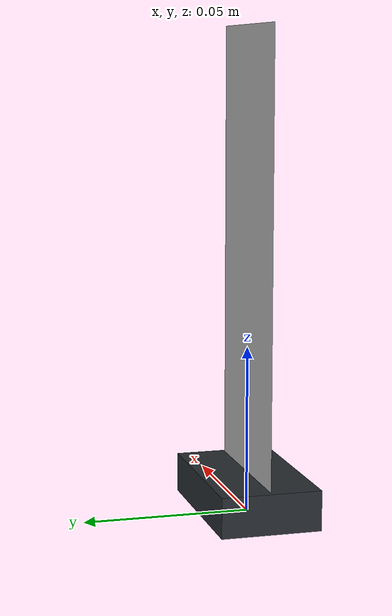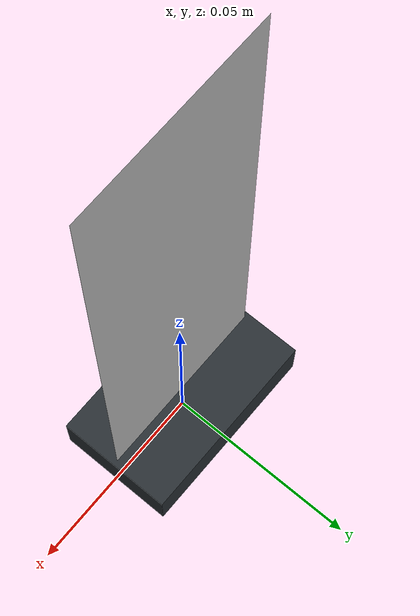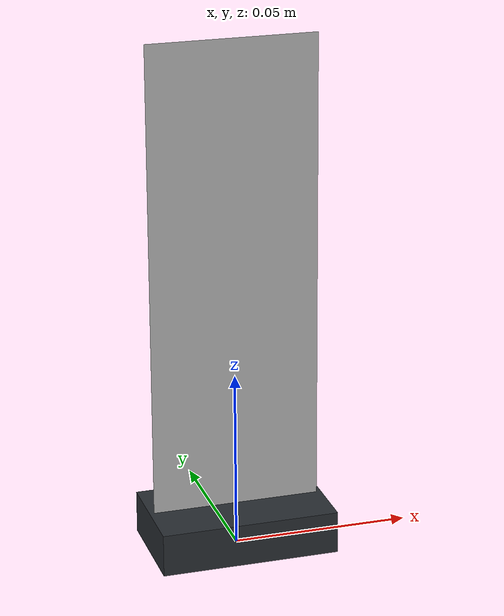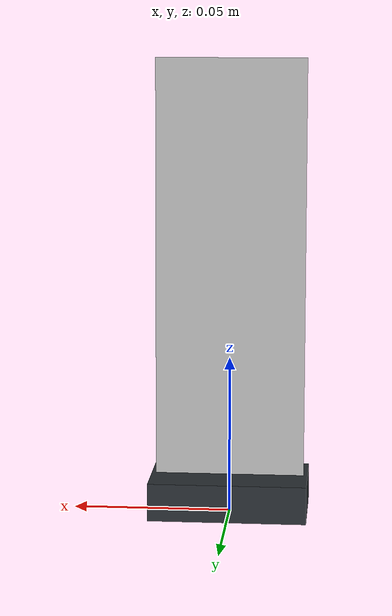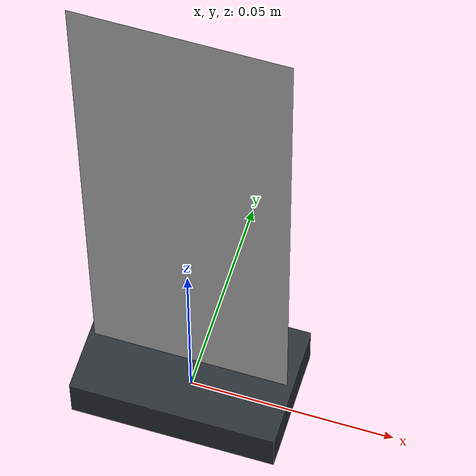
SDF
<?xml version="1.0"?>
<sdf version="1.6"><model name="resident_12"><static>true</static><link name="body">
<visual name="artwork"><geometry><mesh><uri>model://resident_12/meshes/card.dae</uri></mesh></geometry><cast_shadows>false</cast_shadows></visual><collision name="card"><pose>0 0 0.075000 0 0 0</pose><geometry><box><size>0.050000 0.005000 0.150000</size></box></geometry></collision><visual name="stand_base"><pose>0 0 0.006000 0 0 0</pose><geometry><box><size>0.050000 0.030000 0.012000</size></box></geometry><material><ambient>.16 .18 .20 1</ambient><diffuse>.16 .18 .20 1</diffuse></material></visual><collision name="stand_base"><pose>0 0 0.006000 0 0 0</pose><geometry><box><size>0.050000 0.030000 0.012000</size></box></geometry></collision>
 </link></model></sdf>
